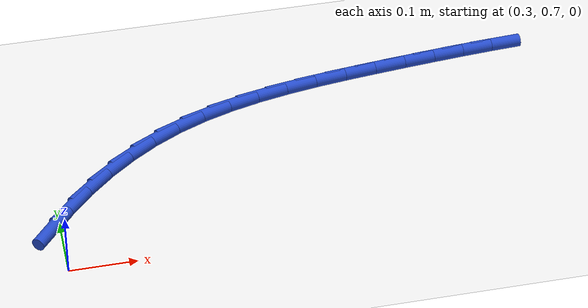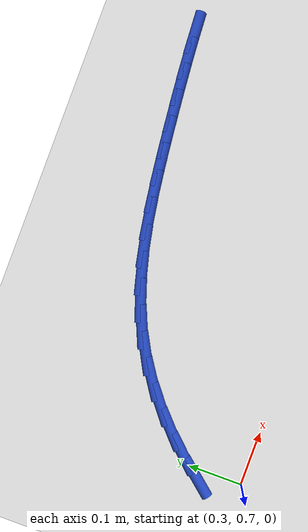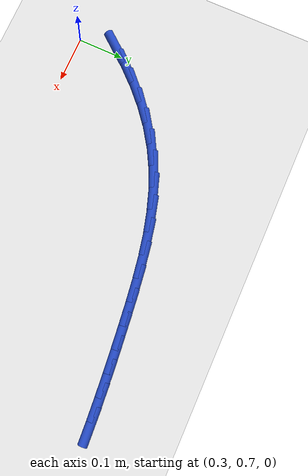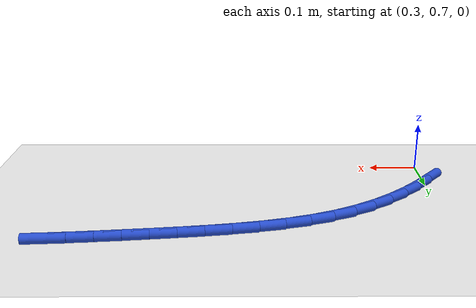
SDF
<sdf version="1.6">
 <world name="default">
  <model name="ground_plane">
   <static>1</static>
   <link name="link">
    <collision name="collision">
     <geometry><plane><normal>0 0 1</normal><size>100 100</size></plane></geometry>
     <surface><friction><ode><mu>100</mu><mu2>50</mu2></ode></friction></surface>
    </collision>
    <visual name="visual">
     <cast_shadows>0</cast_shadows>
     <geometry><plane><normal>0 0 1</normal><size>100 100</size></plane></geometry>
     <material>
      <script><uri>file://media/materials/scripts/gazebo.material</uri><name>Gazebo/WhiteGlow</name></script>
     </material>
    </visual>
   </link>
  </model>
  <model name="line">
   <link name="link_17">
    <pose>0.2884919329361118 0.7821271698027971 0.01 0 1.57 0.8768476063972177</pose>
    <collision name="collision">
     <geometry><cylinder><radius>0.01</radius><length>0.08</length></cylinder></geometry>
    </collision>
    <visual name="visual">
     <material>
      <script><name>Gazebo/Blue</name><uri>file://media/materials/scripts/gazebo.material</uri></script>
     </material>
     <geometry><cylinder><radius>0.01</radius><length>0.08</length></cylinder></geometry>
    </visual>
   </link>
   <link name="link_18">
    <pose>0.31994545675283503 0.819932051583968 0.01 0 1.57 0.8143525726415654</pose>
    <collision name="collision">
     <geometry><cylinder><radius>0.01</radius><length>0.08</length></cylinder></geometry>
    </collision>
    <visual name="visual">
     <material>
      <script><name>Gazebo/Blue</name><uri>file://media/materials/scripts/gazebo.material</uri></script>
     </material>
     <geometry><cylinder><radius>0.01</radius><length>0.08</length></cylinder></geometry>
    </visual>
   </link>
   <link name="link_19">
    <pose>0.3532740661957334 0.855248802505951 0.01 0 1.57 0.7449893984221209</pose>
    <collision name="collision">
     <geometry><cylinder><radius>0.01</radius><length>0.08</length></cylinder></geometry>
    </collision>
    <visual name="visual">
     <material>
      <script><name>Gazebo/Blue</name><uri>file://media/materials/scripts/gazebo.material</uri></script>
     </material>
     <geometry><cylinder><radius>0.01</radius><length>0.08</length></cylinder></geometry>
    </visual>
   </link>
   <link name="link_20">
    <pose>0.38854991522927174 0.8877830374010015 0.01 0 1.57 0.6685160232272929</pose>
    <collision name="collision">
     <geometry><cylinder><radius>0.01</radius><length>0.08</length></cylinder></geometry>
    </collision>
    <visual name="visual">
     <material>
      <script><name>Gazebo/Blue</name><uri>file://media/materials/scripts/gazebo.material</uri></script>
     </material>
     <geometry><cylinder><radius>0.01</radius><length>0.08</length></cylinder></geometry>
    </visual>
   </link>
   <link name="link_21">
    <pose>0.42584515781791443 0.9172403711013737 0.01 0 1.57 0.5849765413739358</pose>
    <collision name="collision">
     <geometry><cylinder><radius>0.01</radius><length>0.08</length></cylinder></geometry>
    </collision>
    <visual name="visual">
     <material>
      <script><name>Gazebo/Blue</name><uri>file://media/materials/scripts/gazebo.material</uri></script>
     </material>
     <geometry><cylinder><radius>0.01</radius><length>0.08</length></cylinder></geometry>
    </visual>
   </link>
   <link name="link_22">
    <pose>0.4652319479261262 0.943326418439322 0.01 0 1.57 0.4948184956689808</pose>
    <collision name="collision">
     <geometry><cylinder><radius>0.01</radius><length>0.08</length></cylinder></geometry>
    </collision>
    <visual name="visual">
     <material>
      <script><name>Gazebo/Blue</name><uri>file://media/materials/scripts/gazebo.material</uri></script>
     </material>
     <geometry><cylinder><radius>0.01</radius><length>0.08</length></cylinder></geometry>
    </visual>
   </link>
   <link name="link_23">
    <pose>0.5067824395183717 0.9657467942471014 0.01 0 1.57 0.402084227582565</pose>
    <collision name="collision">
     <geometry><cylinder><radius>0.01</radius><length>0.08</length></cylinder></geometry>
    </collision>
    <visual name="visual">
     <material>
      <script><name>Gazebo/Blue</name><uri>file://media/materials/scripts/gazebo.material</uri></script>
     </material>
     <geometry><cylinder><radius>0.01</radius><length>0.08</length></cylinder></geometry>
    </visual>
   </link>
   <link name="link_24">
    <pose>0.5504942899350385 0.9843353539701478 0.01 0 1.57 0.3206302841895804</pose>
    <collision name="collision">
     <geometry><cylinder><radius>0.01</radius><length>0.08</length></cylinder></geometry>
    </collision>
    <visual name="visual">
     <material>
      <script><name>Gazebo/Blue</name><uri>file://media/materials/scripts/gazebo.material</uri></script>
     </material>
     <geometry><cylinder><radius>0.01</radius><length>0.08</length></cylinder></geometry>
    </visual>
   </link>
   <link name="link_25">
    <pose>0.5960522234504847 0.9994646449579873 0.01 0 1.57 0.25361632333466483</pose>
    <collision name="collision">
     <geometry><cylinder><radius>0.01</radius><length>0.08</length></cylinder></geometry>
    </collision>
    <visual name="visual">
     <material>
      <script><name>Gazebo/Blue</name><uri>file://media/materials/scripts/gazebo.material</uri></script>
     </material>
     <geometry><cylinder><radius>0.01</radius><length>0.08</length></cylinder></geometry>
    </visual>
   </link>
   <link name="link_26">
    <pose>0.6430588088947914 1.0116486392848314 0.01 0 1.57 0.20021726474361068</pose>
    <collision name="collision">
     <geometry><cylinder><radius>0.01</radius><length>0.08</length></cylinder></geometry>
    </collision>
    <visual name="visual">
     <material>
      <script><name>Gazebo/Blue</name><uri>file://media/materials/scripts/gazebo.material</uri></script>
     </material>
     <geometry><cylinder><radius>0.01</radius><length>0.08</length></cylinder></geometry>
    </visual>
   </link>
   <link name="link_27">
    <pose>0.6911166147583987 1.0214013096095613 0.01 0 1.57 0.15948511516861477</pose>
    <collision name="collision">
     <geometry><cylinder><radius>0.01</radius><length>0.08</length></cylinder></geometry>
    </collision>
    <visual name="visual">
     <material>
      <script><name>Gazebo/Blue</name><uri>file://media/materials/scripts/gazebo.material</uri></script>
     </material>
     <geometry><cylinder><radius>0.01</radius><length>0.08</length></cylinder></geometry>
    </visual>
   </link>
   <link name="link_28">
    <pose>0.7398282095317469 1.029236628591058 0.01 0 1.57 0.13060233392473475</pose>
    <collision name="collision">
     <geometry><cylinder><radius>0.01</radius><length>0.08</length></cylinder></geometry>
    </collision>
    <visual name="visual">
     <material>
      <script><name>Gazebo/Blue</name><uri>file://media/materials/scripts/gazebo.material</uri></script>
     </material>
     <geometry><cylinder><radius>0.01</radius><length>0.08</length></cylinder></geometry>
    </visual>
   </link>
   <link name="link_29">
    <pose>0.7887961617052762 1.0356685688882021 0.01 0 1.57 0.11303017697079211</pose>
    <collision name="collision">
     <geometry><cylinder><radius>0.01</radius><length>0.08</length></cylinder></geometry>
    </collision>
    <visual name="visual">
     <material>
      <script><name>Gazebo/Blue</name><uri>file://media/materials/scripts/gazebo.material</uri></script>
     </material>
     <geometry><cylinder><radius>0.01</radius><length>0.08</length></cylinder></geometry>
    </visual>
   </link>
   <link name="link_30">
    <pose>0.8376230397694265 1.0412111031598748 0.01 0 1.57 0.10499841717770726</pose>
    <collision name="collision">
     <geometry><cylinder><radius>0.01</radius><length>0.08</length></cylinder></geometry>
    </collision>
    <visual name="visual">
     <material>
      <script><name>Gazebo/Blue</name><uri>file://media/materials/scripts/gazebo.material</uri></script>
     </material>
     <geometry><cylinder><radius>0.01</radius><length>0.08</length></cylinder></geometry>
    </visual>
   </link>
   <link name="link_31">
    <pose>0.8859809220531941 1.0463073461653623 0.01 0 1.57 0.09760615085269297</pose>
    <collision name="collision">
     <geometry><cylinder><radius>0.01</radius><length>0.08</length></cylinder></geometry>
    </collision>
    <visual name="visual">
     <material>
      <script><name>Gazebo/Blue</name><uri>file://media/materials/scripts/gazebo.material</uri></script>
     </material>
     <geometry><cylinder><radius>0.01</radius><length>0.08</length></cylinder></geometry>
    </visual>
   </link>
   <link name="link_32">
    <pose>0.9339321320311835 1.0510025991757024 0.01 0 1.57 0.08776248850794602</pose>
    <collision name="collision">
     <geometry><cylinder><radius>0.01</radius><length>0.08</length></cylinder></geometry>
    </collision>
    <visual name="visual">
     <material>
      <script><name>Gazebo/Blue</name><uri>file://media/materials/scripts/gazebo.material</uri></script>
     </material>
     <geometry><cylinder><radius>0.01</radius><length>0.08</length></cylinder></geometry>
    </visual>
   </link>
   <link name="link_33">
    <pose>0.9816750867436391 1.0552034305226854 0.01 0 1.57 0.07554397021373996</pose>
    <collision name="collision">
     <geometry><cylinder><radius>0.01</radius><length>0.08</length></cylinder></geometry>
    </collision>
    <visual name="visual">
     <material>
      <script><name>Gazebo/Blue</name><uri>file://media/materials/scripts/gazebo.material</uri></script>
     </material>
     <geometry><cylinder><radius>0.01</radius><length>0.08</length></cylinder></geometry>
    </visual>
   </link>
   <link name="link_34">
    <pose>1.0294083434975336 1.0588162655510671 0.01 0 1.57 0.061091136379166314</pose>
    <collision name="collision">
     <geometry><cylinder><radius>0.01</radius><length>0.08</length></cylinder></geometry>
    </collision>
    <visual name="visual">
     <material>
      <script><name>Gazebo/Blue</name><uri>file://media/materials/scripts/gazebo.material</uri></script>
     </material>
     <geometry><cylinder><radius>0.01</radius><length>0.08</length></cylinder></geometry>
    </visual>
   </link>
  </model>
 </world>
</sdf>
